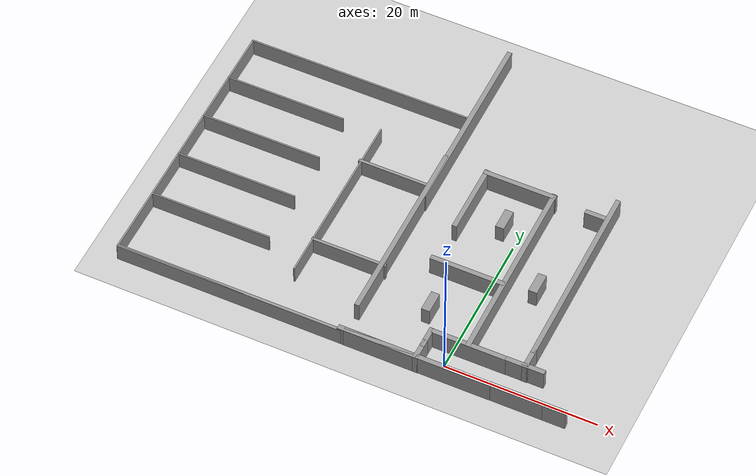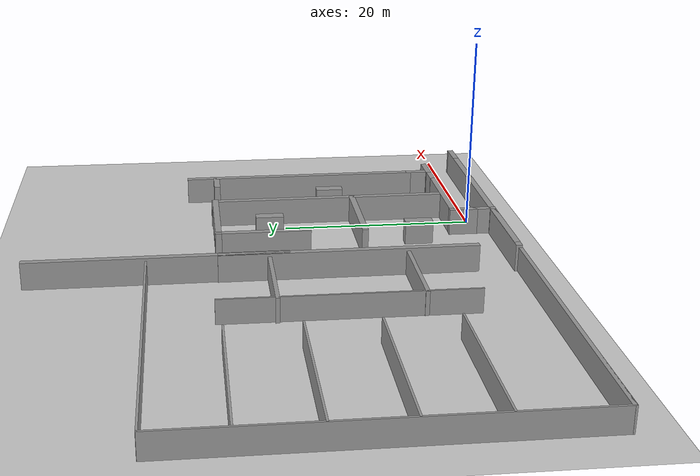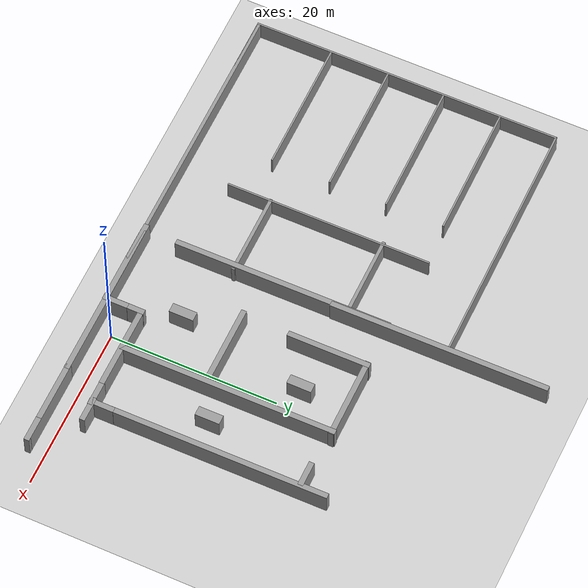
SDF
<sdf version="1.7">
 <world name="default">
  <model name="ground_plane">
   <static>1</static>
   <link name="link">
    <collision name="collision">
     <geometry><plane><normal>0 0 1</normal><size>100 100</size></plane></geometry>
     <surface><friction><ode><mu>100</mu><mu2>50</mu2></ode></friction></surface>
    </collision>
    <visual name="visual">
     <cast_shadows>0</cast_shadows>
     <geometry><plane><normal>0 0 1</normal><size>100 100</size></plane></geometry>
     <material>
      <script><uri>file://media/materials/scripts/gazebo.material</uri><name>Gazebo/Grey</name></script>
     </material>
    </visual>
   </link>
  </model>
  <model name="grey_wall_hou">
   <link name="link">
    <pose>0 0 1.37589 0 -0 0</pose>
    <inertial>
     <inertia><ixx>0</ixx><ixy>0</ixy><ixz>0</ixz><iyy>0</iyy><iyz>0</iyz><izz>0</izz></inertia>
     <mass>0</mass>
    </inertial>
    <visual name="visual">
     <cast_shadows>0</cast_shadows>
     <geometry><box><size>9.82221 0.642976 2.8</size></box></geometry>
     <material>
      <script>
       <uri>model://grey_wall/materials/scripts</uri>
       <uri>model://grey_wall/materials/textures</uri>
       <name>vrc/grey_wall</name>
      </script>
      <shader type="pixel"><normal_map>__default__</normal_map></shader>
      <ambient>1 1 1 1</ambient>
      <diffuse>1 1 1 1</diffuse>
      <specular>0 0 0 1</specular>
      <emissive>0 0 0 1</emissive>
     </material>
    </visual>
    <collision name="collision">
     <geometry><box><size>9.82221 0.642976 2.8</size></box></geometry>
     <surface>
      <friction>
       <ode><mu>1</mu><mu2>1</mu2><fdir1>0 0 0</fdir1><slip1>0</slip1><slip2>0</slip2></ode>
       <torsional>
        <coefficient>1</coefficient>
        <patch_radius>0</patch_radius>
        <surface_radius>0</surface_radius>
        <use_patch_radius>1</use_patch_radius>
        <ode><slip>0</slip></ode>
       </torsional>
      </friction>
      <bounce><restitution_coefficient>0</restitution_coefficient><threshold>1e+06</threshold></bounce>
      <contact>
       <collide_without_contact>0</collide_without_contact>
       <collide_without_contact_bitmask>1</collide_without_contact_bitmask>
       <collide_bitmask>1</collide_bitmask>
       <ode>
        <soft_cfm>0</soft_cfm>
        <soft_erp>0.2</soft_erp>
        <kp>1e+13</kp>
        <kd>1</kd>
        <max_vel>0.01</max_vel>
        <min_depth>0</min_depth>
       </ode>
       <bullet>
        <split_impulse>1</split_impulse>
        <split_impulse_penetration_threshold>-0.01</split_impulse_penetration_threshold>
        <soft_cfm>0</soft_cfm>
        <soft_erp>0.2</soft_erp>
        <kp>1e+13</kp>
        <kd>1</kd>
       </bullet>
      </contact>
     </surface>
    </collision>
   </link>
   <static>1</static>
   <pose>2.05548 -1.91312 0 0 -0 0</pose>
  </model>
  <model name="grey_wall_hou_clone_clone">
   <link name="link">
    <pose>0 0 1.37589 0 -0 0</pose>
    <inertial>
     <inertia><ixx>0</ixx><ixy>0</ixy><ixz>0</ixz><iyy>0</iyy><iyz>0</iyz><izz>0</izz></inertia>
     <mass>0</mass>
    </inertial>
    <visual name="visual">
     <cast_shadows>0</cast_shadows>
     <geometry><box><size>9.82221 0.642976 2.8</size></box></geometry>
     <material>
      <script>
       <uri>model://grey_wall/materials/scripts</uri>
       <uri>model://grey_wall/materials/textures</uri>
       <name>vrc/grey_wall</name>
      </script>
      <shader type="pixel"><normal_map>__default__</normal_map></shader>
      <ambient>1 1 1 1</ambient>
      <diffuse>1 1 1 1</diffuse>
      <specular>0 0 0 1</specular>
      <emissive>0 0 0 1</emissive>
     </material>
    </visual>
    <collision name="collision">
     <geometry><box><size>9.82221 0.642976 2.8</size></box></geometry>
     <surface>
      <friction>
       <ode><mu>1</mu><mu2>1</mu2><fdir1>0 0 0</fdir1><slip1>0</slip1><slip2>0</slip2></ode>
       <torsional>
        <coefficient>1</coefficient>
        <patch_radius>0</patch_radius>
        <surface_radius>0</surface_radius>
        <use_patch_radius>1</use_patch_radius>
        <ode><slip>0</slip></ode>
       </torsional>
      </friction>
      <bounce><restitution_coefficient>0</restitution_coefficient><threshold>1e+06</threshold></bounce>
      <contact>
       <collide_without_contact>0</collide_without_contact>
       <collide_without_contact_bitmask>1</collide_without_contact_bitmask>
       <collide_bitmask>1</collide_bitmask>
       <ode>
        <soft_cfm>0</soft_cfm>
        <soft_erp>0.2</soft_erp>
        <kp>1e+13</kp>
        <kd>1</kd>
        <max_vel>0.01</max_vel>
        <min_depth>0</min_depth>
       </ode>
       <bullet>
        <split_impulse>1</split_impulse>
        <split_impulse_penetration_threshold>-0.01</split_impulse_penetration_threshold>
        <soft_cfm>0</soft_cfm>
        <soft_erp>0.2</soft_erp>
        <kp>1e+13</kp>
        <kd>1</kd>
       </bullet>
      </contact>
     </surface>
    </collision>
   </link>
   <static>1</static>
   <pose>2.12702 2.37014 0 0 -0 0</pose>
  </model>
  <model name="grey_wall_hou_clone_clone_clone_0">
   <link name="link">
    <pose>0 0 1.37589 0 -0 0</pose>
    <inertial>
     <inertia><ixx>0</ixx><ixy>0</ixy><ixz>0</ixz><iyy>0</iyy><iyz>0</iyz><izz>0</izz></inertia>
     <mass>0</mass>
    </inertial>
    <visual name="visual">
     <cast_shadows>0</cast_shadows>
     <geometry><box><size>9.82221 0.642976 2.8</size></box></geometry>
     <material>
      <script>
       <uri>model://grey_wall/materials/scripts</uri>
       <uri>model://grey_wall/materials/textures</uri>
       <name>vrc/grey_wall</name>
      </script>
      <shader type="pixel"><normal_map>__default__</normal_map></shader>
      <ambient>1 1 1 1</ambient>
      <diffuse>1 1 1 1</diffuse>
      <specular>0 0 0 1</specular>
      <emissive>0 0 0 1</emissive>
     </material>
    </visual>
    <collision name="collision">
     <geometry><box><size>9.82221 0.642976 2.8</size></box></geometry>
     <surface>
      <friction>
       <ode><mu>1</mu><mu2>1</mu2><fdir1>0 0 0</fdir1><slip1>0</slip1><slip2>0</slip2></ode>
       <torsional>
        <coefficient>1</coefficient>
        <patch_radius>0</patch_radius>
        <surface_radius>0</surface_radius>
        <use_patch_radius>1</use_patch_radius>
        <ode><slip>0</slip></ode>
       </torsional>
      </friction>
      <bounce><restitution_coefficient>0</restitution_coefficient><threshold>1e+06</threshold></bounce>
      <contact>
       <collide_without_contact>0</collide_without_contact>
       <collide_without_contact_bitmask>1</collide_without_contact_bitmask>
       <collide_bitmask>1</collide_bitmask>
       <ode>
        <soft_cfm>0</soft_cfm>
        <soft_erp>0.2</soft_erp>
        <kp>1e+13</kp>
        <kd>1</kd>
        <max_vel>0.01</max_vel>
        <min_depth>0</min_depth>
       </ode>
       <bullet>
        <split_impulse>1</split_impulse>
        <split_impulse_penetration_threshold>-0.01</split_impulse_penetration_threshold>
        <soft_cfm>0</soft_cfm>
        <soft_erp>0.2</soft_erp>
        <kp>1e+13</kp>
        <kd>1</kd>
       </bullet>
      </contact>
     </surface>
    </collision>
   </link>
   <static>1</static>
   <pose>11.3798 -1.88767 0 0 -0 0</pose>
  </model>
  <model name="grey_wall_short">
   <link name="link">
    <pose>0 0 1.37589 0 -0 0</pose>
    <inertial>
     <inertia><ixx>0</ixx><ixy>0</ixy><ixz>0</ixz><iyy>0</iyy><iyz>0</iyz><izz>0</izz></inertia>
     <mass>0</mass>
    </inertial>
    <visual name="visual">
     <cast_shadows>0</cast_shadows>
     <geometry><box><size>3.01651 0.642976 2.8</size></box></geometry>
     <material>
      <script>
       <uri>model://grey_wall/materials/scripts</uri>
       <uri>model://grey_wall/materials/textures</uri>
       <name>vrc/grey_wall</name>
      </script>
      <shader type="pixel"><normal_map>__default__</normal_map></shader>
      <ambient>1 1 1 1</ambient>
      <diffuse>1 1 1 1</diffuse>
      <specular>0 0 0 1</specular>
      <emissive>0 0 0 1</emissive>
     </material>
    </visual>
    <collision name="collision">
     <geometry><box><size>3.01651 0.642976 2.8</size></box></geometry>
     <surface>
      <friction>
       <ode><mu>1</mu><mu2>1</mu2><fdir1>0 0 0</fdir1><slip1>0</slip1><slip2>0</slip2></ode>
       <torsional>
        <coefficient>1</coefficient>
        <patch_radius>0</patch_radius>
        <surface_radius>0</surface_radius>
        <use_patch_radius>1</use_patch_radius>
        <ode><slip>0</slip></ode>
       </torsional>
      </friction>
      <bounce><restitution_coefficient>0</restitution_coefficient><threshold>1e+06</threshold></bounce>
      <contact>
       <collide_without_contact>0</collide_without_contact>
       <collide_without_contact_bitmask>1</collide_without_contact_bitmask>
       <collide_bitmask>1</collide_bitmask>
       <ode>
        <soft_cfm>0</soft_cfm>
        <soft_erp>0.2</soft_erp>
        <kp>1e+13</kp>
        <kd>1</kd>
        <max_vel>0.01</max_vel>
        <min_depth>0</min_depth>
       </ode>
       <bullet>
        <split_impulse>1</split_impulse>
        <split_impulse_penetration_threshold>-0.01</split_impulse_penetration_threshold>
        <soft_cfm>0</soft_cfm>
        <soft_erp>0.2</soft_erp>
        <kp>1e+13</kp>
        <kd>1</kd>
       </bullet>
      </contact>
     </surface>
    </collision>
   </link>
   <static>1</static>
   <pose>8.42725 2.39613 0 0 -0 0</pose>
  </model>
  <model name="grey_wall_short_clone">
   <link name="link">
    <pose>0 0 1.37589 0 -0 0</pose>
    <inertial>
     <inertia><ixx>0</ixx><ixy>0</ixy><ixz>0</ixz><iyy>0</iyy><iyz>0</iyz><izz>0</izz></inertia>
     <mass>0</mass>
    </inertial>
    <visual name="visual">
     <cast_shadows>0</cast_shadows>
     <geometry><box><size>3.01651 0.642976 2.8</size></box></geometry>
     <material>
      <script>
       <uri>model://grey_wall/materials/scripts</uri>
       <uri>model://grey_wall/materials/textures</uri>
       <name>vrc/grey_wall</name>
      </script>
      <shader type="pixel"><normal_map>__default__</normal_map></shader>
      <ambient>1 1 1 1</ambient>
      <diffuse>1 1 1 1</diffuse>
      <specular>0 0 0 1</specular>
      <emissive>0 0 0 1</emissive>
     </material>
    </visual>
    <collision name="collision">
     <geometry><box><size>3.01651 0.642976 2.8</size></box></geometry>
     <surface>
      <friction>
       <ode><mu>1</mu><mu2>1</mu2><fdir1>0 0 0</fdir1><slip1>0</slip1><slip2>0</slip2></ode>
       <torsional>
        <coefficient>1</coefficient>
        <patch_radius>0</patch_radius>
        <surface_radius>0</surface_radius>
        <use_patch_radius>1</use_patch_radius>
        <ode><slip>0</slip></ode>
       </torsional>
      </friction>
      <bounce><restitution_coefficient>0</restitution_coefficient><threshold>1e+06</threshold></bounce>
      <contact>
       <collide_without_contact>0</collide_without_contact>
       <collide_without_contact_bitmask>1</collide_without_contact_bitmask>
       <collide_bitmask>1</collide_bitmask>
       <ode>
        <soft_cfm>0</soft_cfm>
        <soft_erp>0.2</soft_erp>
        <kp>1e+13</kp>
        <kd>1</kd>
        <max_vel>0.01</max_vel>
        <min_depth>0</min_depth>
       </ode>
       <bullet>
        <split_impulse>1</split_impulse>
        <split_impulse_penetration_threshold>-0.01</split_impulse_penetration_threshold>
        <soft_cfm>0</soft_cfm>
        <soft_erp>0.2</soft_erp>
        <kp>1e+13</kp>
        <kd>1</kd>
       </bullet>
      </contact>
     </surface>
    </collision>
   </link>
   <static>1</static>
   <pose>7.84417 27.1476 0 0 -0 0</pose>
  </model>
  <model name="grey_wall_short_0_clone_1">
   <link name="link">
    <pose>0 0 1.37589 0 -0 0</pose>
    <inertial>
     <inertia><ixx>0</ixx><ixy>0</ixy><ixz>0</ixz><iyy>0</iyy><iyz>0</iyz><izz>0</izz></inertia>
     <mass>0</mass>
    </inertial>
    <visual name="visual">
     <cast_shadows>0</cast_shadows>
     <geometry><box><size>3.01651 0.642976 2.8</size></box></geometry>
     <material>
      <script>
       <uri>model://grey_wall/materials/scripts</uri>
       <uri>model://grey_wall/materials/textures</uri>
       <name>vrc/grey_wall</name>
      </script>
      <shader type="pixel"><normal_map>__default__</normal_map></shader>
      <ambient>1 1 1 1</ambient>
      <diffuse>1 1 1 1</diffuse>
      <specular>0 0 0 1</specular>
      <emissive>0 0 0 1</emissive>
     </material>
    </visual>
    <collision name="collision">
     <geometry><box><size>3.01651 0.642976 2.8</size></box></geometry>
     <surface>
      <friction>
       <ode><mu>1</mu><mu2>1</mu2><fdir1>0 0 0</fdir1><slip1>0</slip1><slip2>0</slip2></ode>
       <torsional>
        <coefficient>1</coefficient>
        <patch_radius>0</patch_radius>
        <surface_radius>0</surface_radius>
        <use_patch_radius>1</use_patch_radius>
        <ode><slip>0</slip></ode>
       </torsional>
      </friction>
      <bounce><restitution_coefficient>0</restitution_coefficient><threshold>1e+06</threshold></bounce>
      <contact>
       <collide_without_contact>0</collide_without_contact>
       <collide_without_contact_bitmask>1</collide_without_contact_bitmask>
       <collide_bitmask>1</collide_bitmask>
       <ode>
        <soft_cfm>0</soft_cfm>
        <soft_erp>0.2</soft_erp>
        <kp>1e+13</kp>
        <kd>1</kd>
        <max_vel>0.01</max_vel>
        <min_depth>0</min_depth>
       </ode>
       <bullet>
        <split_impulse>1</split_impulse>
        <split_impulse_penetration_threshold>-0.01</split_impulse_penetration_threshold>
        <soft_cfm>0</soft_cfm>
        <soft_erp>0.2</soft_erp>
        <kp>1e+13</kp>
        <kd>1</kd>
       </bullet>
      </contact>
     </surface>
    </collision>
   </link>
   <static>1</static>
   <pose>9.47315 3.55431 0 0 0 -1.57204</pose>
  </model>
  <model name="grey_wall_long_clone_0_clone_0">
   <link name="link">
    <pose>0 0 1.37589 0 -0 0</pose>
    <inertial>
     <inertia><ixx>0</ixx><ixy>0</ixy><ixz>0</ixz><iyy>0</iyy><iyz>0</iyz><izz>0</izz></inertia>
     <mass>0</mass>
    </inertial>
    <visual name="visual">
     <cast_shadows>0</cast_shadows>
     <geometry><box><size>25.8815 0.642976 2.8</size></box></geometry>
     <material>
      <script>
       <uri>model://grey_wall/materials/scripts</uri>
       <uri>model://grey_wall/materials/textures</uri>
       <name>vrc/grey_wall</name>
      </script>
      <shader type="pixel"><normal_map>__default__</normal_map></shader>
      <ambient>1 1 1 1</ambient>
      <diffuse>1 1 1 1</diffuse>
      <specular>0 0 0 1</specular>
      <emissive>0 0 0 1</emissive>
     </material>
    </visual>
    <collision name="collision">
     <geometry><box><size>25.8815 0.642976 2.8</size></box></geometry>
     <surface>
      <friction>
       <ode><mu>1</mu><mu2>1</mu2><fdir1>0 0 0</fdir1><slip1>0</slip1><slip2>0</slip2></ode>
       <torsional>
        <coefficient>1</coefficient>
        <patch_radius>0</patch_radius>
        <surface_radius>0</surface_radius>
        <use_patch_radius>1</use_patch_radius>
        <ode><slip>0</slip></ode>
       </torsional>
      </friction>
      <bounce><restitution_coefficient>0</restitution_coefficient><threshold>1e+06</threshold></bounce>
      <contact>
       <collide_without_contact>0</collide_without_contact>
       <collide_without_contact_bitmask>1</collide_without_contact_bitmask>
       <collide_bitmask>1</collide_bitmask>
       <ode>
        <soft_cfm>0</soft_cfm>
        <soft_erp>0.2</soft_erp>
        <kp>1e+13</kp>
        <kd>1</kd>
        <max_vel>0.01</max_vel>
        <min_depth>0</min_depth>
       </ode>
       <bullet>
        <split_impulse>1</split_impulse>
        <split_impulse_penetration_threshold>-0.01</split_impulse_penetration_threshold>
        <soft_cfm>0</soft_cfm>
        <soft_erp>0.2</soft_erp>
        <kp>1e+13</kp>
        <kd>1</kd>
       </bullet>
      </contact>
     </surface>
    </collision>
   </link>
   <static>1</static>
   <pose>-12.6168 14.8725 0 0 0 -1.5658</pose>
  </model>
  <model name="grey_wall_long_clone_0_clone_0_clone">
   <link name="link">
    <pose>0 0 1.37589 0 -0 0</pose>
    <inertial>
     <inertia><ixx>0</ixx><ixy>0</ixy><ixz>0</ixz><iyy>0</iyy><iyz>0</iyz><izz>0</izz></inertia>
     <mass>0</mass>
    </inertial>
    <visual name="visual">
     <cast_shadows>0</cast_shadows>
     <geometry><box><size>25.8815 0.642976 2.8</size></box></geometry>
     <material>
      <script>
       <uri>model://grey_wall/materials/scripts</uri>
       <uri>model://grey_wall/materials/textures</uri>
       <name>vrc/grey_wall</name>
      </script>
      <shader type="pixel"><normal_map>__default__</normal_map></shader>
      <ambient>1 1 1 1</ambient>
      <diffuse>1 1 1 1</diffuse>
      <specular>0 0 0 1</specular>
      <emissive>0 0 0 1</emissive>
     </material>
    </visual>
    <collision name="collision">
     <geometry><box><size>25.8815 0.642976 2.8</size></box></geometry>
     <surface>
      <friction>
       <ode><mu>1</mu><mu2>1</mu2><fdir1>0 0 0</fdir1><slip1>0</slip1><slip2>0</slip2></ode>
       <torsional>
        <coefficient>1</coefficient>
        <patch_radius>0</patch_radius>
        <surface_radius>0</surface_radius>
        <use_patch_radius>1</use_patch_radius>
        <ode><slip>0</slip></ode>
       </torsional>
      </friction>
      <bounce><restitution_coefficient>0</restitution_coefficient><threshold>1e+06</threshold></bounce>
      <contact>
       <collide_without_contact>0</collide_without_contact>
       <collide_without_contact_bitmask>1</collide_without_contact_bitmask>
       <collide_bitmask>1</collide_bitmask>
       <ode>
        <soft_cfm>0</soft_cfm>
        <soft_erp>0.2</soft_erp>
        <kp>1e+13</kp>
        <kd>1</kd>
        <max_vel>0.01</max_vel>
        <min_depth>0</min_depth>
       </ode>
       <bullet>
        <split_impulse>1</split_impulse>
        <split_impulse_penetration_threshold>-0.01</split_impulse_penetration_threshold>
        <soft_cfm>0</soft_cfm>
        <soft_erp>0.2</soft_erp>
        <kp>1e+13</kp>
        <kd>1</kd>
       </bullet>
      </contact>
     </surface>
    </collision>
   </link>
   <static>1</static>
   <pose>9.39866 17.4791 0 0 0 -1.5658</pose>
  </model>
  <model name="grey_wall_hou_clone">
   <link name="link">
    <pose>0 0 1.37589 0 -0 0</pose>
    <inertial>
     <inertia><ixx>0</ixx><ixy>0</ixy><ixz>0</ixz><iyy>0</iyy><iyz>0</iyz><izz>0</izz></inertia>
     <mass>0</mass>
    </inertial>
    <visual name="visual">
     <cast_shadows>0</cast_shadows>
     <geometry><box><size>9.82221 0.642976 2.8</size></box></geometry>
     <material>
      <script>
       <uri>model://grey_wall/materials/scripts</uri>
       <uri>model://grey_wall/materials/textures</uri>
       <name>vrc/grey_wall</name>
      </script>
      <shader type="pixel"><normal_map>__default__</normal_map></shader>
      <ambient>1 1 1 1</ambient>
      <diffuse>1 1 1 1</diffuse>
      <specular>0 0 0 1</specular>
      <emissive>0 0 0 1</emissive>
     </material>
    </visual>
    <collision name="collision">
     <geometry><box><size>9.82221 0.642976 2.8</size></box></geometry>
     <surface>
      <friction>
       <ode><mu>1</mu><mu2>1</mu2><fdir1>0 0 0</fdir1><slip1>0</slip1><slip2>0</slip2></ode>
       <torsional>
        <coefficient>1</coefficient>
        <patch_radius>0</patch_radius>
        <surface_radius>0</surface_radius>
        <use_patch_radius>1</use_patch_radius>
        <ode><slip>0</slip></ode>
       </torsional>
      </friction>
      <bounce><restitution_coefficient>0</restitution_coefficient><threshold>1e+06</threshold></bounce>
      <contact>
       <collide_without_contact>0</collide_without_contact>
       <collide_without_contact_bitmask>1</collide_without_contact_bitmask>
       <collide_bitmask>1</collide_bitmask>
       <ode>
        <soft_cfm>0</soft_cfm>
        <soft_erp>0.2</soft_erp>
        <kp>1e+13</kp>
        <kd>1</kd>
        <max_vel>0.01</max_vel>
        <min_depth>0</min_depth>
       </ode>
       <bullet>
        <split_impulse>1</split_impulse>
        <split_impulse_penetration_threshold>-0.01</split_impulse_penetration_threshold>
        <soft_cfm>0</soft_cfm>
        <soft_erp>0.2</soft_erp>
        <kp>1e+13</kp>
        <kd>1</kd>
       </bullet>
      </contact>
     </surface>
    </collision>
   </link>
   <static>1</static>
   <pose>-7.44149 -1.94811 0 0 -0 0</pose>
  </model>
  <model name="grey_wall_short_0_clone_1_clone_0">
   <link name="link">
    <pose>0 0 1.37589 0 -0 0</pose>
    <inertial>
     <inertia><ixx>0</ixx><ixy>0</ixy><ixz>0</ixz><iyy>0</iyy><iyz>0</iyz><izz>0</izz></inertia>
     <mass>0</mass>
    </inertial>
    <visual name="visual">
     <cast_shadows>0</cast_shadows>
     <geometry><box><size>3.01651 0.642976 2.8</size></box></geometry>
     <material>
      <script>
       <uri>model://grey_wall/materials/scripts</uri>
       <uri>model://grey_wall/materials/textures</uri>
       <name>vrc/grey_wall</name>
      </script>
      <shader type="pixel"><normal_map>__default__</normal_map></shader>
      <ambient>1 1 1 1</ambient>
      <diffuse>1 1 1 1</diffuse>
      <specular>0 0 0 1</specular>
      <emissive>0 0 0 1</emissive>
     </material>
    </visual>
    <collision name="collision">
     <geometry><box><size>3.01651 0.642976 2.8</size></box></geometry>
     <surface>
      <friction>
       <ode><mu>1</mu><mu2>1</mu2><fdir1>0 0 0</fdir1><slip1>0</slip1><slip2>0</slip2></ode>
       <torsional>
        <coefficient>1</coefficient>
        <patch_radius>0</patch_radius>
        <surface_radius>0</surface_radius>
        <use_patch_radius>1</use_patch_radius>
        <ode><slip>0</slip></ode>
       </torsional>
      </friction>
      <bounce><restitution_coefficient>0</restitution_coefficient><threshold>1e+06</threshold></bounce>
      <contact>
       <collide_without_contact>0</collide_without_contact>
       <collide_without_contact_bitmask>1</collide_without_contact_bitmask>
       <collide_bitmask>1</collide_bitmask>
       <ode>
        <soft_cfm>0</soft_cfm>
        <soft_erp>0.2</soft_erp>
        <kp>1e+13</kp>
        <kd>1</kd>
        <max_vel>0.01</max_vel>
        <min_depth>0</min_depth>
       </ode>
       <bullet>
        <split_impulse>1</split_impulse>
        <split_impulse_penetration_threshold>-0.01</split_impulse_penetration_threshold>
        <soft_cfm>0</soft_cfm>
        <soft_erp>0.2</soft_erp>
        <kp>1e+13</kp>
        <kd>1</kd>
       </bullet>
      </contact>
     </surface>
    </collision>
   </link>
   <static>1</static>
   <pose>-2.88969 1.20993 0 0 0 -1.57204</pose>
  </model>
  <model name="grey_wall_short_0_clone_1_clone_1">
   <link name="link">
    <pose>0 0 1.37589 0 -0 0</pose>
    <inertial>
     <inertia><ixx>0</ixx><ixy>0</ixy><ixz>0</ixz><iyy>0</iyy><iyz>0</iyz><izz>0</izz></inertia>
     <mass>0</mass>
    </inertial>
    <visual name="visual">
     <cast_shadows>0</cast_shadows>
     <geometry><box><size>3.01651 0.642976 2.8</size></box></geometry>
     <material>
      <script>
       <uri>model://grey_wall/materials/scripts</uri>
       <uri>model://grey_wall/materials/textures</uri>
       <name>vrc/grey_wall</name>
      </script>
      <shader type="pixel"><normal_map>__default__</normal_map></shader>
      <ambient>1 1 1 1</ambient>
      <diffuse>1 1 1 1</diffuse>
      <specular>0 0 0 1</specular>
      <emissive>0 0 0 1</emissive>
     </material>
    </visual>
    <collision name="collision">
     <geometry><box><size>3.01651 0.642976 2.8</size></box></geometry>
     <surface>
      <friction>
       <ode><mu>1</mu><mu2>1</mu2><fdir1>0 0 0</fdir1><slip1>0</slip1><slip2>0</slip2></ode>
       <torsional>
        <coefficient>1</coefficient>
        <patch_radius>0</patch_radius>
        <surface_radius>0</surface_radius>
        <use_patch_radius>1</use_patch_radius>
        <ode><slip>0</slip></ode>
       </torsional>
      </friction>
      <bounce><restitution_coefficient>0</restitution_coefficient><threshold>1e+06</threshold></bounce>
      <contact>
       <collide_without_contact>0</collide_without_contact>
       <collide_without_contact_bitmask>1</collide_without_contact_bitmask>
       <collide_bitmask>1</collide_bitmask>
       <ode>
        <soft_cfm>0</soft_cfm>
        <soft_erp>0.2</soft_erp>
        <kp>1e+13</kp>
        <kd>1</kd>
        <max_vel>0.01</max_vel>
        <min_depth>0</min_depth>
       </ode>
       <bullet>
        <split_impulse>1</split_impulse>
        <split_impulse_penetration_threshold>-0.01</split_impulse_penetration_threshold>
        <soft_cfm>0</soft_cfm>
        <soft_erp>0.2</soft_erp>
        <kp>1e+13</kp>
        <kd>1</kd>
       </bullet>
      </contact>
     </surface>
    </collision>
   </link>
   <static>1</static>
   <pose>-2.88201 -0.774232 0 0 0 -1.57204</pose>
  </model>
  <model name="grey_wall_long_clone_0_clone_0_clone_clone_0">
   <link name="link">
    <pose>0 0 1.37589 0 -0 0</pose>
    <inertial>
     <inertia><ixx>0</ixx><ixy>0</ixy><ixz>0</ixz><iyy>0</iyy><iyz>0</iyz><izz>0</izz></inertia>
     <mass>0</mass>
    </inertial>
    <visual name="visual">
     <cast_shadows>0</cast_shadows>
     <geometry><box><size>25.8815 0.642976 2.8</size></box></geometry>
     <material>
      <script>
       <uri>model://grey_wall/materials/scripts</uri>
       <uri>model://grey_wall/materials/textures</uri>
       <name>vrc/grey_wall</name>
      </script>
      <shader type="pixel"><normal_map>__default__</normal_map></shader>
      <ambient>1 1 1 1</ambient>
      <diffuse>1 1 1 1</diffuse>
      <specular>0 0 0 1</specular>
      <emissive>0 0 0 1</emissive>
     </material>
    </visual>
    <collision name="collision">
     <geometry><box><size>25.8815 0.642976 2.8</size></box></geometry>
     <surface>
      <friction>
       <ode><mu>1</mu><mu2>1</mu2><fdir1>0 0 0</fdir1><slip1>0</slip1><slip2>0</slip2></ode>
       <torsional>
        <coefficient>1</coefficient>
        <patch_radius>0</patch_radius>
        <surface_radius>0</surface_radius>
        <use_patch_radius>1</use_patch_radius>
        <ode><slip>0</slip></ode>
       </torsional>
      </friction>
      <bounce><restitution_coefficient>0</restitution_coefficient><threshold>1e+06</threshold></bounce>
      <contact>
       <collide_without_contact>0</collide_without_contact>
       <collide_without_contact_bitmask>1</collide_without_contact_bitmask>
       <collide_bitmask>1</collide_bitmask>
       <ode>
        <soft_cfm>0</soft_cfm>
        <soft_erp>0.2</soft_erp>
        <kp>1e+13</kp>
        <kd>1</kd>
        <max_vel>0.01</max_vel>
        <min_depth>0</min_depth>
       </ode>
       <bullet>
        <split_impulse>1</split_impulse>
        <split_impulse_penetration_threshold>-0.01</split_impulse_penetration_threshold>
        <soft_cfm>0</soft_cfm>
        <soft_erp>0.2</soft_erp>
        <kp>1e+13</kp>
        <kd>1</kd>
       </bullet>
      </contact>
     </surface>
    </collision>
   </link>
   <static>1</static>
   <pose>-12.6023 33.7046 0 0 0 -1.5658</pose>
  </model>
  <model name="grey_wall_long_clone_0_clone_0_clone_clone_0_clone">
   <link name="link">
    <pose>0 0 1.37589 0 -0 0</pose>
    <inertial>
     <inertia><ixx>0</ixx><ixy>0</ixy><ixz>0</ixz><iyy>0</iyy><iyz>0</iyz><izz>0</izz></inertia>
     <mass>0</mass>
    </inertial>
    <visual name="visual">
     <cast_shadows>0</cast_shadows>
     <geometry><box><size>25.8815 0.642976 2.8</size></box></geometry>
     <material>
      <script>
       <uri>model://grey_wall/materials/scripts</uri>
       <uri>model://grey_wall/materials/textures</uri>
       <name>vrc/grey_wall</name>
      </script>
      <shader type="pixel"><normal_map>__default__</normal_map></shader>
      <ambient>1 1 1 1</ambient>
      <diffuse>1 1 1 1</diffuse>
      <specular>0 0 0 1</specular>
      <emissive>0 0 0 1</emissive>
     </material>
    </visual>
    <collision name="collision">
     <geometry><box><size>25.8815 0.642976 2.8</size></box></geometry>
     <surface>
      <friction>
       <ode><mu>1</mu><mu2>1</mu2><fdir1>0 0 0</fdir1><slip1>0</slip1><slip2>0</slip2></ode>
       <torsional>
        <coefficient>1</coefficient>
        <patch_radius>0</patch_radius>
        <surface_radius>0</surface_radius>
        <use_patch_radius>1</use_patch_radius>
        <ode><slip>0</slip></ode>
       </torsional>
      </friction>
      <bounce><restitution_coefficient>0</restitution_coefficient><threshold>1e+06</threshold></bounce>
      <contact>
       <collide_without_contact>0</collide_without_contact>
       <collide_without_contact_bitmask>1</collide_without_contact_bitmask>
       <collide_bitmask>1</collide_bitmask>
       <ode>
        <soft_cfm>0</soft_cfm>
        <soft_erp>0.2</soft_erp>
        <kp>1e+13</kp>
        <kd>1</kd>
        <max_vel>0.01</max_vel>
        <min_depth>0</min_depth>
       </ode>
       <bullet>
        <split_impulse>1</split_impulse>
        <split_impulse_penetration_threshold>-0.01</split_impulse_penetration_threshold>
        <soft_cfm>0</soft_cfm>
        <soft_erp>0.2</soft_erp>
        <kp>1e+13</kp>
        <kd>1</kd>
       </bullet>
      </contact>
     </surface>
    </collision>
   </link>
   <static>1</static>
   <pose>1.97329 14.9913 0 0 0 -1.5658</pose>
  </model>
  <model name="grey_wall_hou_clone_clone_clone_4_clone_clone_clone_clone_0">
   <link name="link">
    <pose>0 0 1.37589 0 -0 0</pose>
    <inertial>
     <inertia><ixx>0</ixx><ixy>0</ixy><ixz>0</ixz><iyy>0</iyy><iyz>0</iyz><izz>0</izz></inertia>
     <mass>0</mass>
    </inertial>
    <visual name="visual">
     <cast_shadows>0</cast_shadows>
     <geometry><box><size>9.82221 0.642976 2.8</size></box></geometry>
     <material>
      <script>
       <uri>model://grey_wall/materials/scripts</uri>
       <uri>model://grey_wall/materials/textures</uri>
       <name>vrc/grey_wall</name>
      </script>
      <shader type="pixel"><normal_map>__default__</normal_map></shader>
      <ambient>1 1 1 1</ambient>
      <diffuse>1 1 1 1</diffuse>
      <specular>0 0 0 1</specular>
      <emissive>0 0 0 1</emissive>
     </material>
    </visual>
    <collision name="collision">
     <geometry><box><size>9.82221 0.642976 2.8</size></box></geometry>
     <surface>
      <friction>
       <ode><mu>1</mu><mu2>1</mu2><fdir1>0 0 0</fdir1><slip1>0</slip1><slip2>0</slip2></ode>
       <torsional>
        <coefficient>1</coefficient>
        <patch_radius>0</patch_radius>
        <surface_radius>0</surface_radius>
        <use_patch_radius>1</use_patch_radius>
        <ode><slip>0</slip></ode>
       </torsional>
      </friction>
      <bounce><restitution_coefficient>0</restitution_coefficient><threshold>1e+06</threshold></bounce>
      <contact>
       <collide_without_contact>0</collide_without_contact>
       <collide_without_contact_bitmask>1</collide_without_contact_bitmask>
       <collide_bitmask>1</collide_bitmask>
       <ode>
        <soft_cfm>0</soft_cfm>
        <soft_erp>0.2</soft_erp>
        <kp>1e+13</kp>
        <kd>1</kd>
        <max_vel>0.01</max_vel>
        <min_depth>0</min_depth>
       </ode>
       <bullet>
        <split_impulse>1</split_impulse>
        <split_impulse_penetration_threshold>-0.01</split_impulse_penetration_threshold>
        <soft_cfm>0</soft_cfm>
        <soft_erp>0.2</soft_erp>
        <kp>1e+13</kp>
        <kd>1</kd>
       </bullet>
      </contact>
     </surface>
    </collision>
   </link>
   <static>1</static>
   <pose>-2.78869 12.5468 0 0 -0 0</pose>
  </model>
  <model name="grey_wall_hou_clone_clone_clone_4_clone_clone_clone_clone_1">
   <link name="link">
    <pose>0 0 1.37589 0 -0 0</pose>
    <inertial>
     <inertia><ixx>0</ixx><ixy>0</ixy><ixz>0</ixz><iyy>0</iyy><iyz>0</iyz><izz>0</izz></inertia>
     <mass>0</mass>
    </inertial>
    <visual name="visual">
     <cast_shadows>0</cast_shadows>
     <geometry><box><size>9.82221 0.642976 2.8</size></box></geometry>
     <material>
      <script>
       <uri>model://grey_wall/materials/scripts</uri>
       <uri>model://grey_wall/materials/textures</uri>
       <name>vrc/grey_wall</name>
      </script>
      <shader type="pixel"><normal_map>__default__</normal_map></shader>
      <ambient>1 1 1 1</ambient>
      <diffuse>1 1 1 1</diffuse>
      <specular>0 0 0 1</specular>
      <emissive>0 0 0 1</emissive>
     </material>
    </visual>
    <collision name="collision">
     <geometry><box><size>9.82221 0.642976 2.8</size></box></geometry>
     <surface>
      <friction>
       <ode><mu>1</mu><mu2>1</mu2><fdir1>0 0 0</fdir1><slip1>0</slip1><slip2>0</slip2></ode>
       <torsional>
        <coefficient>1</coefficient>
        <patch_radius>0</patch_radius>
        <surface_radius>0</surface_radius>
        <use_patch_radius>1</use_patch_radius>
        <ode><slip>0</slip></ode>
       </torsional>
      </friction>
      <bounce><restitution_coefficient>0</restitution_coefficient><threshold>1e+06</threshold></bounce>
      <contact>
       <collide_without_contact>0</collide_without_contact>
       <collide_without_contact_bitmask>1</collide_without_contact_bitmask>
       <collide_bitmask>1</collide_bitmask>
       <ode>
        <soft_cfm>0</soft_cfm>
        <soft_erp>0.2</soft_erp>
        <kp>1e+13</kp>
        <kd>1</kd>
        <max_vel>0.01</max_vel>
        <min_depth>0</min_depth>
       </ode>
       <bullet>
        <split_impulse>1</split_impulse>
        <split_impulse_penetration_threshold>-0.01</split_impulse_penetration_threshold>
        <soft_cfm>0</soft_cfm>
        <soft_erp>0.2</soft_erp>
        <kp>1e+13</kp>
        <kd>1</kd>
       </bullet>
      </contact>
     </surface>
    </collision>
   </link>
   <static>1</static>
   <pose>-2.5977 27.5209 0 0 -0 0</pose>
  </model>
  <model name="unit_box_clone_2_clone_0_clone_1_clone_1">
   <pose>-4.8811 6.471 1.23849 1e-06 -1e-06 -0.000348</pose>
   <link name="link">
    <inertial>
     <mass>1</mass>
     <inertia>
      <ixx>0.166667</ixx>
      <ixy>0</ixy>
      <ixz>0</ixz>
      <iyy>0.166667</iyy>
      <iyz>0</iyz>
      <izz>0.166667</izz>
     </inertia>
    </inertial>
    <collision name="collision"><geometry><box><size>1.12952 2.91492 2.47699</size></box></geometry></collision>
    <visual name="visual">
     <geometry><box><size>1.12952 2.91492 2.47699</size></box></geometry>
     <material>
      <script><name>Gazebo/Grey</name><uri>file://media/materials/scripts/gazebo.material</uri></script>
     </material>
    </visual>
   </link>
  </model>
  <model name="grey_wall_short_clone_0">
   <link name="link">
    <pose>0 0 1.37589 0 -0 0</pose>
    <inertial>
     <inertia><ixx>0</ixx><ixy>0</ixy><ixz>0</ixz><iyy>0</iyy><iyz>0</iyz><izz>0</izz></inertia>
     <mass>0</mass>
    </inertial>
    <visual name="visual">
     <cast_shadows>0</cast_shadows>
     <geometry><box><size>3.01651 0.642976 2.8</size></box></geometry>
     <material>
      <script>
       <uri>model://grey_wall/materials/scripts</uri>
       <uri>model://grey_wall/materials/textures</uri>
       <name>vrc/grey_wall</name>
      </script>
      <shader type="pixel"><normal_map>__default__</normal_map></shader>
      <ambient>1 1 1 1</ambient>
      <diffuse>1 1 1 1</diffuse>
      <specular>0 0 0 1</specular>
      <emissive>0 0 0 1</emissive>
     </material>
    </visual>
    <collision name="collision">
     <geometry><box><size>3.01651 0.642976 2.8</size></box></geometry>
     <surface>
      <friction>
       <ode><mu>1</mu><mu2>1</mu2><fdir1>0 0 0</fdir1><slip1>0</slip1><slip2>0</slip2></ode>
       <torsional>
        <coefficient>1</coefficient>
        <patch_radius>0</patch_radius>
        <surface_radius>0</surface_radius>
        <use_patch_radius>1</use_patch_radius>
        <ode><slip>0</slip></ode>
       </torsional>
      </friction>
      <bounce><restitution_coefficient>0</restitution_coefficient><threshold>1e+06</threshold></bounce>
      <contact>
       <collide_without_contact>0</collide_without_contact>
       <collide_without_contact_bitmask>1</collide_without_contact_bitmask>
       <collide_bitmask>1</collide_bitmask>
       <ode>
        <soft_cfm>0</soft_cfm>
        <soft_erp>0.2</soft_erp>
        <kp>1e+13</kp>
        <kd>1</kd>
        <max_vel>0.01</max_vel>
        <min_depth>0</min_depth>
       </ode>
       <bullet>
        <split_impulse>1</split_impulse>
        <split_impulse_penetration_threshold>-0.01</split_impulse_penetration_threshold>
        <soft_cfm>0</soft_cfm>
        <soft_erp>0.2</soft_erp>
        <kp>1e+13</kp>
        <kd>1</kd>
       </bullet>
      </contact>
     </surface>
    </collision>
   </link>
   <static>1</static>
   <pose>15.2267 -1.88807 0 0 -0 0</pose>
  </model>
  <model name="grey_wall_hou_clone_clone_3_clone_5_clone_clone">
   <link name="link">
    <pose>0 0 1.37589 0 -0 0</pose>
    <inertial>
     <inertia><ixx>0</ixx><ixy>0</ixy><ixz>0</ixz><iyy>0</iyy><iyz>0</iyz><izz>0</izz></inertia>
     <mass>0</mass>
    </inertial>
    <visual name="visual">
     <cast_shadows>0</cast_shadows>
     <geometry><box><size>9.82221 0.642976 2.8</size></box></geometry>
     <material>
      <script>
       <uri>model://grey_wall/materials/scripts</uri>
       <uri>model://grey_wall/materials/textures</uri>
       <name>vrc/grey_wall</name>
      </script>
      <shader type="pixel"><normal_map>__default__</normal_map></shader>
      <ambient>1 1 1 1</ambient>
      <diffuse>1 1 1 1</diffuse>
      <specular>0 0 0 1</specular>
      <emissive>0 0 0 1</emissive>
     </material>
    </visual>
    <collision name="collision">
     <geometry><box><size>9.82221 0.642976 2.8</size></box></geometry>
     <surface>
      <friction>
       <ode><mu>1</mu><mu2>1</mu2><fdir1>0 0 0</fdir1><slip1>0</slip1><slip2>0</slip2></ode>
       <torsional>
        <coefficient>1</coefficient>
        <patch_radius>0</patch_radius>
        <surface_radius>0</surface_radius>
        <use_patch_radius>1</use_patch_radius>
        <ode><slip>0</slip></ode>
       </torsional>
      </friction>
      <bounce><restitution_coefficient>0</restitution_coefficient><threshold>1e+06</threshold></bounce>
      <contact>
       <collide_without_contact>0</collide_without_contact>
       <collide_without_contact_bitmask>1</collide_without_contact_bitmask>
       <collide_bitmask>1</collide_bitmask>
       <ode>
        <soft_cfm>0</soft_cfm>
        <soft_erp>0.2</soft_erp>
        <kp>1e+13</kp>
        <kd>1</kd>
        <max_vel>0.01</max_vel>
        <min_depth>0</min_depth>
       </ode>
       <bullet>
        <split_impulse>1</split_impulse>
        <split_impulse_penetration_threshold>-0.01</split_impulse_penetration_threshold>
        <soft_cfm>0</soft_cfm>
        <soft_erp>0.2</soft_erp>
        <kp>1e+13</kp>
        <kd>1</kd>
       </bullet>
      </contact>
     </surface>
    </collision>
   </link>
   <static>1</static>
   <pose>-7.13768 22.9928 0 0 0 -1.56855</pose>
  </model>
  <model name="unit_box_clone_2_clone_0_clone_1_clone_3_clone">
   <pose>-2.13338 21.9395 1.23849 1e-06 -1e-06 -0.000461</pose>
   <link name="link">
    <inertial>
     <mass>1</mass>
     <inertia>
      <ixx>0.166667</ixx>
      <ixy>0</ixy>
      <ixz>0</ixz>
      <iyy>0.166667</iyy>
      <iyz>0</iyz>
      <izz>0.166667</izz>
     </inertia>
    </inertial>
    <collision name="collision"><geometry><box><size>1.12952 2.91492 2.47699</size></box></geometry></collision>
    <visual name="visual">
     <geometry><box><size>1.12952 2.91492 2.47699</size></box></geometry>
     <material>
      <script><name>Gazebo/Grey</name><uri>file://media/materials/scripts/gazebo.material</uri></script>
     </material>
    </visual>
   </link>
  </model>
  <model name="unit_box_clone_2_clone_0_clone_1_clone_3_clone_4">
   <pose>5.59249 14.598 1.23849 1e-06 -1e-06 0.002149</pose>
   <link name="link">
    <inertial>
     <mass>1</mass>
     <inertia>
      <ixx>0.166667</ixx>
      <ixy>0</ixy>
      <ixz>0</ixz>
      <iyy>0.166667</iyy>
      <iyz>0</iyz>
      <izz>0.166667</izz>
     </inertia>
    </inertial>
    <collision name="collision"><geometry><box><size>1.12952 2.91492 2.47699</size></box></geometry></collision>
    <visual name="visual">
     <geometry><box><size>1.12952 2.91492 2.47699</size></box></geometry>
     <material>
      <script><name>Gazebo/Grey</name><uri>file://media/materials/scripts/gazebo.material</uri></script>
     </material>
    </visual>
   </link>
  </model>
  <model name="grey_wall_short_clone_1">
   <link name="link">
    <pose>0 0 1.37589 0 -0 0</pose>
    <inertial>
     <inertia><ixx>0</ixx><ixy>0</ixy><ixz>0</ixz><iyy>0</iyy><iyz>0</iyz><izz>0</izz></inertia>
     <mass>0</mass>
    </inertial>
    <visual name="visual">
     <cast_shadows>0</cast_shadows>
     <geometry><box><size>3.01651 0.642976 2.8</size></box></geometry>
     <material>
      <script>
       <uri>model://grey_wall/materials/scripts</uri>
       <uri>model://grey_wall/materials/textures</uri>
       <name>vrc/grey_wall</name>
      </script>
      <shader type="pixel"><normal_map>__default__</normal_map></shader>
      <ambient>1 1 1 1</ambient>
      <diffuse>1 1 1 1</diffuse>
      <specular>0 0 0 1</specular>
      <emissive>0 0 0 1</emissive>
     </material>
    </visual>
    <collision name="collision">
     <geometry><box><size>3.01651 0.642976 2.8</size></box></geometry>
     <surface>
      <friction>
       <ode><mu>1</mu><mu2>1</mu2><fdir1>0 0 0</fdir1><slip1>0</slip1><slip2>0</slip2></ode>
       <torsional>
        <coefficient>1</coefficient>
        <patch_radius>0</patch_radius>
        <surface_radius>0</surface_radius>
        <use_patch_radius>1</use_patch_radius>
        <ode><slip>0</slip></ode>
       </torsional>
      </friction>
      <bounce><restitution_coefficient>0</restitution_coefficient><threshold>1e+06</threshold></bounce>
      <contact>
       <collide_without_contact>0</collide_without_contact>
       <collide_without_contact_bitmask>1</collide_without_contact_bitmask>
       <collide_bitmask>1</collide_bitmask>
       <ode>
        <soft_cfm>0</soft_cfm>
        <soft_erp>0.2</soft_erp>
        <kp>1e+13</kp>
        <kd>1</kd>
        <max_vel>0.01</max_vel>
        <min_depth>0</min_depth>
       </ode>
       <bullet>
        <split_impulse>1</split_impulse>
        <split_impulse_penetration_threshold>-0.01</split_impulse_penetration_threshold>
        <soft_cfm>0</soft_cfm>
        <soft_erp>0.2</soft_erp>
        <kp>1e+13</kp>
        <kd>1</kd>
       </bullet>
      </contact>
     </surface>
    </collision>
   </link>
   <static>1</static>
   <pose>10.5041 2.44328 0 0 -0 0</pose>
  </model>
  <model name="area7_0">
   <pose>-28.8531 4.45392 0 0 0 -1.5702</pose>
   <link name="Wall_12">
    <collision name="Wall_12_Collision">
     <geometry><box><size>30.5 0.2 2.5</size></box></geometry>
     <pose>0 0 1.25 0 -0 0</pose>
    </collision>
    <visual name="Wall_12_Visual">
     <pose>0 0 1.25 0 -0 0</pose>
     <geometry><box><size>30.5 0.2 2.5</size></box></geometry>
     <material>
      <script><uri>file://media/materials/scripts/gazebo.material</uri><name>Gazebo/Grey</name></script>
      <ambient>1 1 1 1</ambient>
     </material>
     <meta><layer>0</layer></meta>
    </visual>
    <pose>-30.2634 1.15551 0 0 -0 -1.5708</pose>
   </link>
   <link name="Wall_14">
    <collision name="Wall_14_Collision">
     <geometry><box><size>37.0498 0.2 2.5</size></box></geometry>
     <pose>0 0 1.25 0 -0 0</pose>
    </collision>
    <visual name="Wall_14_Visual">
     <pose>0 0 1.25 0 -0 0</pose>
     <geometry><box><size>37.0498 0.2 2.5</size></box></geometry>
     <material>
      <script><uri>file://media/materials/scripts/gazebo.material</uri><name>Gazebo/Grey</name></script>
      <ambient>1 1 1 1</ambient>
     </material>
     <meta><layer>0</layer></meta>
    </visual>
    <pose>-11.8146 -14.0155 0 0 -0 0</pose>
   </link>
   <link name="Wall_16">
    <collision name="Wall_16_Collision">
     <geometry><box><size>23 0.2 2.5</size></box></geometry>
     <pose>0 0 1.25 0 -0 0</pose>
    </collision>
    <visual name="Wall_16_Visual">
     <pose>0 0 1.25 0 -0 0</pose>
     <geometry><box><size>23 0.2 2.5</size></box></geometry>
     <material>
      <script><uri>file://media/materials/scripts/gazebo.material</uri><name>Gazebo/Grey</name></script>
      <ambient>1 1 1 1</ambient>
     </material>
     <meta><layer>0</layer></meta>
    </visual>
    <pose>6.61045 -2.61551 0 0 -0 1.5708</pose>
   </link>
   <link name="Wall_20">
    <collision name="Wall_20_Collision">
     <geometry><box><size>16 0.2 2.5</size></box></geometry>
     <pose>0 0 1.25 0 -0 0</pose>
    </collision>
    <visual name="Wall_20_Visual">
     <pose>0 0 1.25 0 -0 0</pose>
     <geometry><box><size>16 0.2 2.5</size></box></geometry>
     <material>
      <script><uri>file://media/materials/scripts/gazebo.material</uri><name>Gazebo/Grey</name></script>
      <ambient>1 1 1 1</ambient>
     </material>
     <meta><layer>0</layer></meta>
    </visual>
    <pose>-23.4471 -6.04432 0 0 -0 1.5708</pose>
   </link>
   <link name="Wall_22">
    <collision name="Wall_22_Collision">
     <geometry><box><size>16.0502 0.2 2.5</size></box></geometry>
     <pose>0 0 1.25 0 -0 0</pose>
    </collision>
    <visual name="Wall_22_Visual">
     <pose>0 0 1.25 0 -0 0</pose>
     <geometry><box><size>16.0502 0.2 2.5</size></box></geometry>
     <material>
      <script><uri>file://media/materials/scripts/gazebo.material</uri><name>Gazebo/Grey</name></script>
      <ambient>1 1 1 1</ambient>
     </material>
     <meta><layer>0</layer></meta>
    </visual>
    <pose>-16.5135 -6.02351 0 0 -0 1.5708</pose>
   </link>
   <link name="Wall_24">
    <collision name="Wall_24_Collision">
     <geometry><box><size>16.0502 0.2 2.5</size></box></geometry>
     <pose>0 0 1.25 0 -0 0</pose>
    </collision>
    <visual name="Wall_24_Visual">
     <pose>0 0 1.25 0 -0 0</pose>
     <geometry><box><size>16.0502 0.2 2.5</size></box></geometry>
     <material>
      <script><uri>file://media/materials/scripts/gazebo.material</uri><name>Gazebo/Grey</name></script>
      <ambient>1 1 1 1</ambient>
     </material>
     <meta><layer>0</layer></meta>
    </visual>
    <pose>-9.62755 -6.02351 0 0 -0 1.5708</pose>
   </link>
   <link name="Wall_26">
    <collision name="Wall_26_Collision">
     <geometry><box><size>16.0497 0.2 2.5</size></box></geometry>
     <pose>0 0 1.25 0 -0 0</pose>
    </collision>
    <visual name="Wall_26_Visual">
     <pose>0 0 1.25 0 -0 0</pose>
     <geometry><box><size>16.0497 0.2 2.5</size></box></geometry>
     <material>
      <script><uri>file://media/materials/scripts/gazebo.material</uri><name>Gazebo/Grey</name></script>
      <ambient>1 1 1 1</ambient>
     </material>
     <meta><layer>0</layer></meta>
    </visual>
    <pose>-2.55655 -5.97651 0 0 -0 1.5708</pose>
   </link>
   <link name="Wall_28">
    <collision name="Wall_28_Collision">
     <geometry><box><size>24.55 0.2 2.5</size></box></geometry>
     <pose>0 0 1.25 0 -0 0</pose>
    </collision>
    <visual name="Wall_28_Visual">
     <pose>0 0 1.25 0 -0 0</pose>
     <geometry><box><size>24.55 0.2 2.5</size></box></geometry>
     <material>
      <script><uri>file://media/materials/scripts/gazebo.material</uri><name>Gazebo/Grey</name></script>
      <ambient>1 1 1 1</ambient>
     </material>
     <meta><layer>0</layer></meta>
    </visual>
    <pose>-11.6836 6.93349 0 0 -0 3.14159</pose>
   </link>
   <static>1</static>
  </model>
  <model name="30m_0.4_clone_4">
   <pose>-27.8227 4.66699 0 0 -0 0</pose>
   <link name="Wall_44">
    <collision name="Wall_44_Collision">
     <geometry><box><size>30.25 0.4 2.5</size></box></geometry>
     <pose>0 0 1.25 0 -0 0</pose>
    </collision>
    <visual name="Wall_44_Visual">
     <pose>0 0 1.25 0 -0 0</pose>
     <geometry><box><size>30.25 0.4 2.5</size></box></geometry>
     <material>
      <script><uri>file://media/materials/scripts/gazebo.material</uri><name>Gazebo/Grey</name></script>
      <ambient>1 1 1 1</ambient>
     </material>
     <meta><layer>0</layer></meta>
    </visual>
    <pose>0 -6.73551 0 0 -0 0</pose>
   </link>
   <static>1</static>
  </model>
  <model name="grey_wall_hou_clone_clone_0">
   <link name="link">
    <pose>0 0 1.37589 0 -0 0</pose>
    <inertial>
     <inertia><ixx>0</ixx><ixy>0</ixy><ixz>0</ixz><iyy>0</iyy><iyz>0</iyz><izz>0</izz></inertia>
     <mass>0</mass>
    </inertial>
    <visual name="visual">
     <cast_shadows>0</cast_shadows>
     <geometry><box><size>9.82221 0.642976 2.8</size></box></geometry>
     <material>
      <script>
       <uri>model://grey_wall/materials/scripts</uri>
       <uri>model://grey_wall/materials/textures</uri>
       <name>vrc/grey_wall</name>
      </script>
      <shader type="pixel"><normal_map>__default__</normal_map></shader>
      <ambient>1 1 1 1</ambient>
      <diffuse>1 1 1 1</diffuse>
      <specular>0 0 0 1</specular>
      <emissive>0 0 0 1</emissive>
     </material>
    </visual>
    <collision name="collision">
     <geometry><box><size>9.82221 0.642976 2.8</size></box></geometry>
     <surface>
      <friction>
       <ode><mu>1</mu><mu2>1</mu2><fdir1>0 0 0</fdir1><slip1>0</slip1><slip2>0</slip2></ode>
       <torsional>
        <coefficient>1</coefficient>
        <patch_radius>0</patch_radius>
        <surface_radius>0</surface_radius>
        <use_patch_radius>1</use_patch_radius>
        <ode><slip>0</slip></ode>
       </torsional>
      </friction>
      <bounce><restitution_coefficient>0</restitution_coefficient><threshold>1e+06</threshold></bounce>
      <contact>
       <collide_without_contact>0</collide_without_contact>
       <collide_without_contact_bitmask>1</collide_without_contact_bitmask>
       <collide_bitmask>1</collide_bitmask>
       <ode>
        <soft_cfm>0</soft_cfm>
        <soft_erp>0.2</soft_erp>
        <kp>1e+13</kp>
        <kd>1</kd>
        <max_vel>0.01</max_vel>
        <min_depth>0</min_depth>
       </ode>
       <bullet>
        <split_impulse>1</split_impulse>
        <split_impulse_penetration_threshold>-0.01</split_impulse_penetration_threshold>
        <soft_cfm>0</soft_cfm>
        <soft_erp>0.2</soft_erp>
        <kp>1e+13</kp>
        <kd>1</kd>
       </bullet>
      </contact>
     </surface>
    </collision>
   </link>
   <static>1</static>
   <pose>-8.27605 -1.92648 0 0 -0 0</pose>
  </model>
  <model name="10m_0.4_0_clone_1">
   <pose>-17.0903 11.0258 0 0 -0 0</pose>
   <link name="Wall_0">
    <collision name="Wall_0_Collision">
     <geometry><box><size>10 0.4 2.5</size></box></geometry>
     <pose>0 0 1.25 0 -0 0</pose>
    </collision>
    <visual name="Wall_0_Visual">
     <pose>0 0 1.25 0 -0 0</pose>
     <geometry><box><size>10 0.4 2.5</size></box></geometry>
     <material>
      <script><uri>file://media/materials/scripts/gazebo.material</uri><name>Gazebo/Grey</name></script>
      <ambient>1 1 1 1</ambient>
     </material>
     <meta><layer>0</layer></meta>
    </visual>
    <pose>-0 -1.915 0 0 -0 0</pose>
   </link>
   <static>1</static>
  </model>
  <model name="10m_0.4_0_clone_clone_1">
   <pose>-17.2717 24.6939 0 0 -0 0</pose>
   <link name="Wall_0">
    <collision name="Wall_0_Collision">
     <geometry><box><size>10 0.4 2.5</size></box></geometry>
     <pose>0 0 1.25 0 -0 0</pose>
    </collision>
    <visual name="Wall_0_Visual">
     <pose>0 0 1.25 0 -0 0</pose>
     <geometry><box><size>10 0.4 2.5</size></box></geometry>
     <material>
      <script><uri>file://media/materials/scripts/gazebo.material</uri><name>Gazebo/Grey</name></script>
      <ambient>1 1 1 1</ambient>
     </material>
     <meta><layer>0</layer></meta>
    </visual>
    <pose>-0 -1.915 0 0 -0 0</pose>
   </link>
   <static>1</static>
  </model>
 </world>
</sdf>
